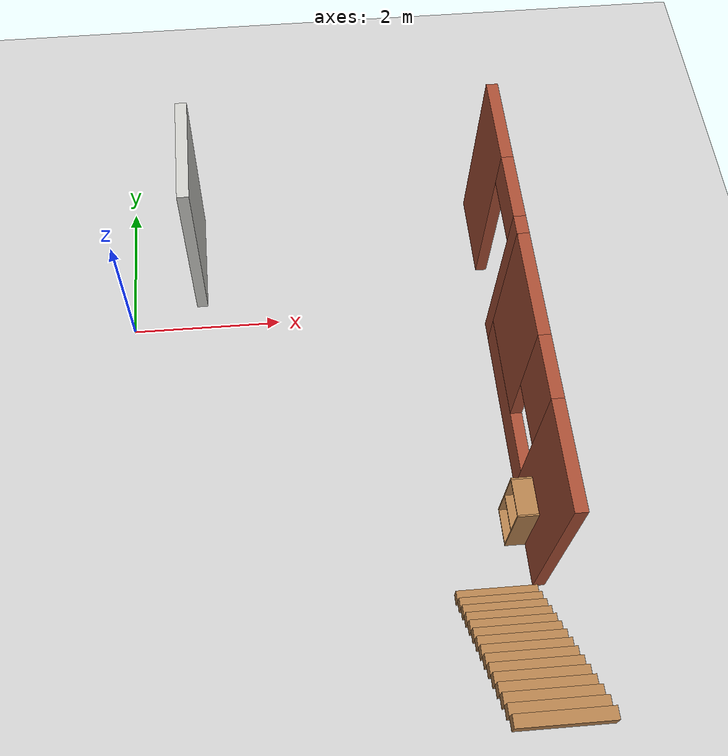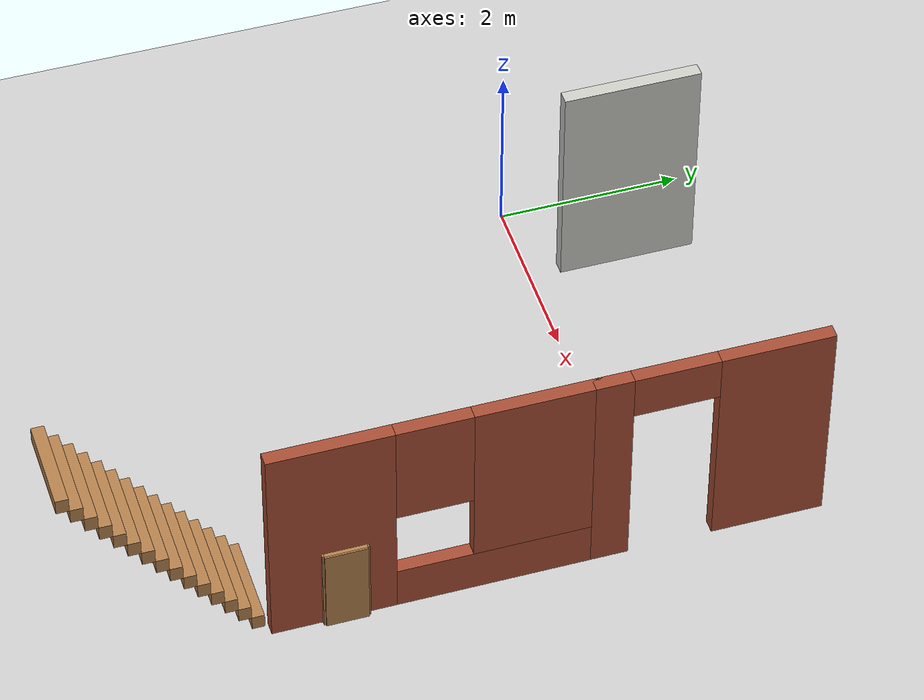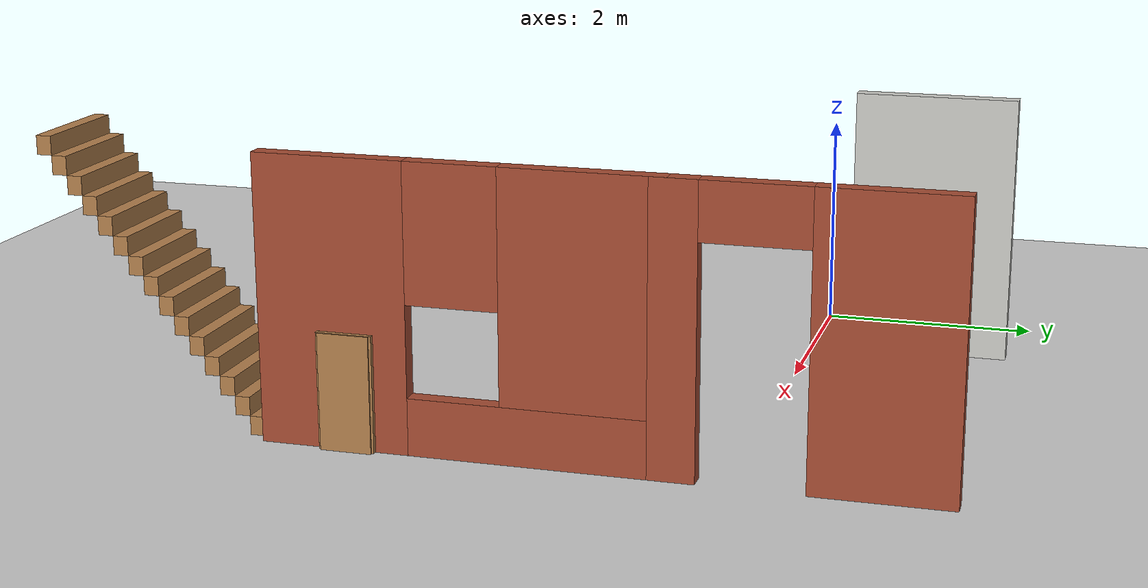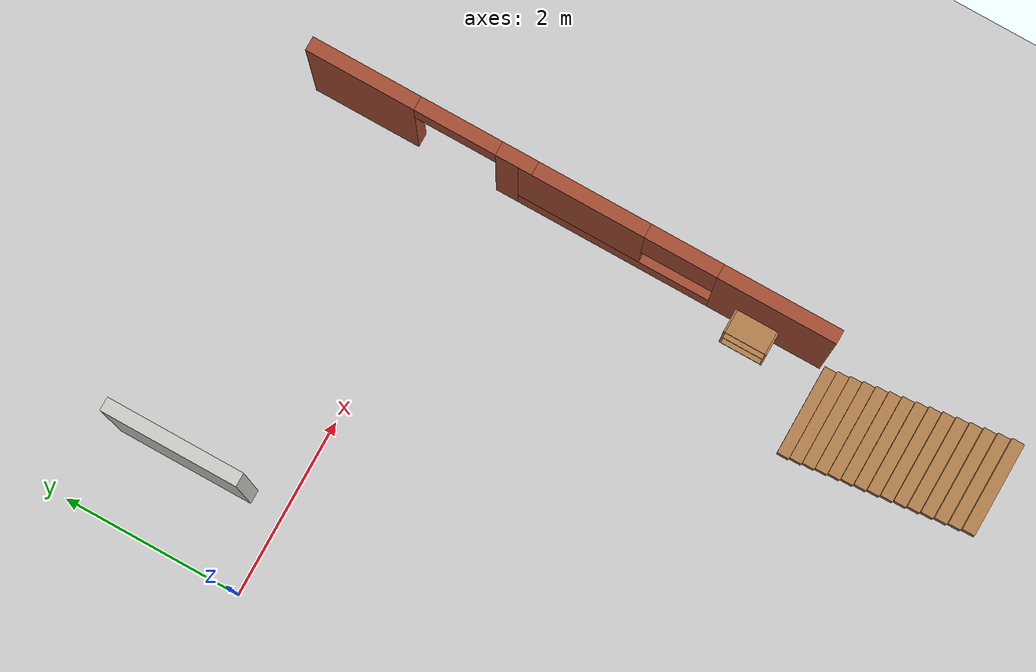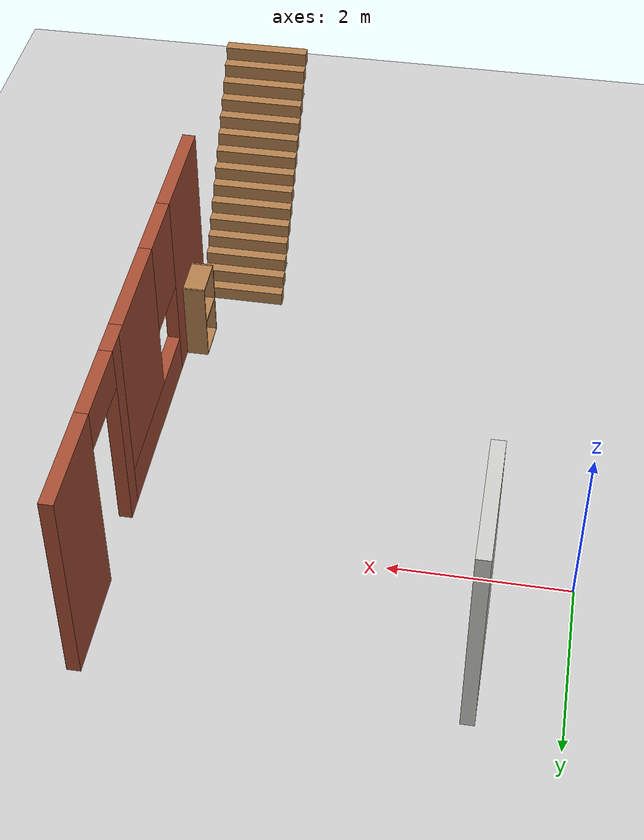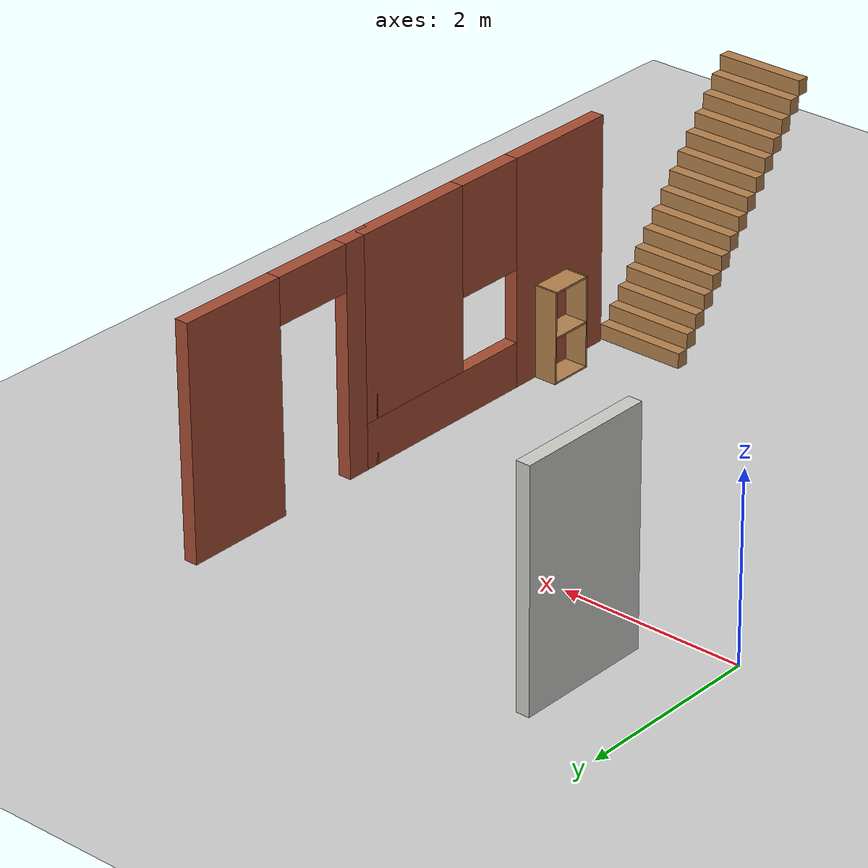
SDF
<sdf version="1.6">
 <world name="default">
  <model name="ground_plane">
   <static>1</static>
   <link name="link">
    <collision name="collision">
     <geometry><plane><normal>0 0 1</normal><size>100 100</size></plane></geometry>
     <surface>
      <contact><collide_bitmask>65535</collide_bitmask></contact>
      <friction><ode><mu>100</mu><mu2>50</mu2></ode></friction>
     </surface>
    </collision>
    <visual name="visual">
     <cast_shadows>0</cast_shadows>
     <geometry><plane><normal>0 0 1</normal><size>100 100</size></plane></geometry>
     <material>
      <script><uri>file://media/materials/scripts/gazebo.material</uri><name>Gazebo/Grey</name></script>
     </material>
    </visual>
   </link>
  </model>
  <model name="Building">
   <link name="Stairs_1">
    <pose>0.046334 -2.64714 0 0 -0 0</pose>
    <visual name="Stairs_1_Visual_3">
     <pose>3.95843 -0.779973 0.583333 0 -0 0</pose>
     <geometry><box><size>1 0.133333 0.166667</size></box></geometry>
     <material>
      <script><uri>file://media/materials/scripts/gazebo.material</uri><name>Gazebo/Wood</name></script>
      <ambient>1 1 1 1</ambient>
      <shader type="pixel"/>
      <diffuse>1 1 1 1</diffuse>
      <specular>0.2 0.2 0.2 1</specular>
      <emissive>0 0 0 1</emissive>
     </material>
     <meta><layer>0</layer></meta>
    </visual>
    <visual name="Stairs_1_Visual_0">
     <pose>3.95843 -0.379973 0.083333 0 -0 0</pose>
     <geometry><box><size>1 0.133333 0.166667</size></box></geometry>
     <material>
      <script><uri>file://media/materials/scripts/gazebo.material</uri><name>Gazebo/Wood</name></script>
      <ambient>1 1 1 1</ambient>
      <shader type="pixel"/>
      <diffuse>1 1 1 1</diffuse>
      <specular>0.2 0.2 0.2 1</specular>
      <emissive>0 0 0 1</emissive>
     </material>
     <meta><layer>0</layer></meta>
    </visual>
    <visual name="Stairs_1_Visual_4">
     <pose>3.95843 -0.913306 0.75 0 -0 0</pose>
     <geometry><box><size>1 0.133333 0.166667</size></box></geometry>
     <material>
      <script><uri>file://media/materials/scripts/gazebo.material</uri><name>Gazebo/Wood</name></script>
      <ambient>1 1 1 1</ambient>
      <shader type="pixel"/>
      <diffuse>1 1 1 1</diffuse>
      <specular>0.2 0.2 0.2 1</specular>
      <emissive>0 0 0 1</emissive>
     </material>
     <meta><layer>0</layer></meta>
    </visual>
    <visual name="Stairs_1_Visual_2">
     <pose>3.95843 -0.646639 0.416667 0 -0 0</pose>
     <geometry><box><size>1 0.133333 0.166667</size></box></geometry>
     <material>
      <script><uri>file://media/materials/scripts/gazebo.material</uri><name>Gazebo/Wood</name></script>
      <ambient>1 1 1 1</ambient>
      <shader type="pixel"/>
      <diffuse>1 1 1 1</diffuse>
      <specular>0.2 0.2 0.2 1</specular>
      <emissive>0 0 0 1</emissive>
     </material>
     <meta><layer>0</layer></meta>
    </visual>
    <visual name="Stairs_1_Visual_5">
     <pose>3.95843 -1.04664 0.916667 0 -0 0</pose>
     <geometry><box><size>1 0.133333 0.166667</size></box></geometry>
     <material>
      <script><uri>file://media/materials/scripts/gazebo.material</uri><name>Gazebo/Wood</name></script>
      <ambient>1 1 1 1</ambient>
      <shader type="pixel"/>
      <diffuse>1 1 1 1</diffuse>
      <specular>0.2 0.2 0.2 1</specular>
      <emissive>0 0 0 1</emissive>
     </material>
     <meta><layer>0</layer></meta>
    </visual>
    <visual name="Stairs_1_Visual_6">
     <pose>3.95843 -1.17997 1.08333 0 -0 0</pose>
     <geometry><box><size>1 0.133333 0.166667</size></box></geometry>
     <material>
      <script><uri>file://media/materials/scripts/gazebo.material</uri><name>Gazebo/Wood</name></script>
      <ambient>1 1 1 1</ambient>
      <shader type="pixel"/>
      <diffuse>1 1 1 1</diffuse>
      <specular>0.2 0.2 0.2 1</specular>
      <emissive>0 0 0 1</emissive>
     </material>
     <meta><layer>0</layer></meta>
    </visual>
    <visual name="Stairs_1_Visual_7">
     <pose>3.95843 -1.31331 1.25 0 -0 0</pose>
     <geometry><box><size>1 0.133333 0.166667</size></box></geometry>
     <material>
      <script><uri>file://media/materials/scripts/gazebo.material</uri><name>Gazebo/Wood</name></script>
      <ambient>1 1 1 1</ambient>
      <shader type="pixel"/>
      <diffuse>1 1 1 1</diffuse>
      <specular>0.2 0.2 0.2 1</specular>
      <emissive>0 0 0 1</emissive>
     </material>
     <meta><layer>0</layer></meta>
    </visual>
    <visual name="Stairs_1_Visual_12">
     <pose>3.95843 -1.97997 2.08333 0 -0 0</pose>
     <geometry><box><size>1 0.133333 0.166667</size></box></geometry>
     <material>
      <script><uri>file://media/materials/scripts/gazebo.material</uri><name>Gazebo/Wood</name></script>
      <ambient>1 1 1 1</ambient>
      <shader type="pixel"/>
      <diffuse>1 1 1 1</diffuse>
      <specular>0.2 0.2 0.2 1</specular>
      <emissive>0 0 0 1</emissive>
     </material>
     <meta><layer>0</layer></meta>
    </visual>
    <visual name="Stairs_1_Visual_13">
     <pose>3.95843 -2.11331 2.25 0 -0 0</pose>
     <geometry><box><size>1 0.133333 0.166667</size></box></geometry>
     <material>
      <script><uri>file://media/materials/scripts/gazebo.material</uri><name>Gazebo/Wood</name></script>
      <ambient>1 1 1 1</ambient>
      <shader type="pixel"/>
      <diffuse>1 1 1 1</diffuse>
      <specular>0.2 0.2 0.2 1</specular>
      <emissive>0 0 0 1</emissive>
     </material>
     <meta><layer>0</layer></meta>
    </visual>
    <visual name="Stairs_1_Visual_14">
     <pose>3.95843 -2.24664 2.41667 0 -0 0</pose>
     <geometry><box><size>1 0.133333 0.166667</size></box></geometry>
     <material>
      <script><uri>file://media/materials/scripts/gazebo.material</uri><name>Gazebo/Wood</name></script>
      <ambient>1 1 1 1</ambient>
      <shader type="pixel"/>
      <diffuse>1 1 1 1</diffuse>
      <specular>0.2 0.2 0.2 1</specular>
      <emissive>0 0 0 1</emissive>
     </material>
     <meta><layer>0</layer></meta>
    </visual>
    <visual name="Stairs_1_Visual_8">
     <pose>3.95843 -1.44664 1.41667 0 -0 0</pose>
     <geometry><box><size>1 0.133333 0.166667</size></box></geometry>
     <material>
      <script><uri>file://media/materials/scripts/gazebo.material</uri><name>Gazebo/Wood</name></script>
      <ambient>1 1 1 1</ambient>
      <shader type="pixel"/>
      <diffuse>1 1 1 1</diffuse>
      <specular>0.2 0.2 0.2 1</specular>
      <emissive>0 0 0 1</emissive>
     </material>
     <meta><layer>0</layer></meta>
    </visual>
    <visual name="Stairs_1_Visual_9">
     <pose>3.95843 -1.57997 1.58333 0 -0 0</pose>
     <geometry><box><size>1 0.133333 0.166667</size></box></geometry>
     <material>
      <script><uri>file://media/materials/scripts/gazebo.material</uri><name>Gazebo/Wood</name></script>
      <ambient>1 1 1 1</ambient>
      <shader type="pixel"/>
      <diffuse>1 1 1 1</diffuse>
      <specular>0.2 0.2 0.2 1</specular>
      <emissive>0 0 0 1</emissive>
     </material>
     <meta><layer>0</layer></meta>
    </visual>
    <visual name="Stairs_1_Visual_10">
     <pose>3.95843 -1.71331 1.75 0 -0 0</pose>
     <geometry><box><size>1 0.133333 0.166667</size></box></geometry>
     <material>
      <script><uri>file://media/materials/scripts/gazebo.material</uri><name>Gazebo/Wood</name></script>
      <ambient>1 1 1 1</ambient>
      <shader type="pixel"/>
      <diffuse>1 1 1 1</diffuse>
      <specular>0.2 0.2 0.2 1</specular>
      <emissive>0 0 0 1</emissive>
     </material>
     <meta><layer>0</layer></meta>
    </visual>
    <visual name="Stairs_1_Visual_11">
     <pose>3.95843 -1.84664 1.91667 0 -0 0</pose>
     <geometry><box><size>1 0.133333 0.166667</size></box></geometry>
     <material>
      <script><uri>file://media/materials/scripts/gazebo.material</uri><name>Gazebo/Wood</name></script>
      <ambient>1 1 1 1</ambient>
      <shader type="pixel"/>
      <diffuse>1 1 1 1</diffuse>
      <specular>0.2 0.2 0.2 1</specular>
      <emissive>0 0 0 1</emissive>
     </material>
     <meta><layer>0</layer></meta>
    </visual>
    <visual name="Stairs_1_Visual_1">
     <pose>3.95843 -0.513306 0.25 0 -0 0</pose>
     <geometry><box><size>1 0.133333 0.166667</size></box></geometry>
     <material>
      <script><uri>file://media/materials/scripts/gazebo.material</uri><name>Gazebo/Wood</name></script>
      <ambient>1 1 1 1</ambient>
      <shader type="pixel"/>
      <diffuse>1 1 1 1</diffuse>
      <specular>0.2 0.2 0.2 1</specular>
      <emissive>0 0 0 1</emissive>
     </material>
     <meta><layer>0</layer></meta>
    </visual>
    <collision name="Stairs_1_Collision_4">
     <pose>3.95843 -0.913306 0.75 0 -0 0</pose>
     <geometry><box><size>1 0.133333 0.166667</size></box></geometry>
     <surface>
      <friction>
       <ode><mu>1</mu><mu2>1</mu2><fdir1>0 0 0</fdir1><slip1>0</slip1><slip2>0</slip2></ode>
       <torsional>
        <coefficient>1</coefficient>
        <patch_radius>0</patch_radius>
        <surface_radius>0</surface_radius>
        <use_patch_radius>1</use_patch_radius>
        <ode><slip>0</slip></ode>
       </torsional>
      </friction>
      <bounce><restitution_coefficient>0</restitution_coefficient><threshold>1e+06</threshold></bounce>
      <contact>
       <collide_without_contact>0</collide_without_contact>
       <collide_without_contact_bitmask>1</collide_without_contact_bitmask>
       <collide_bitmask>1</collide_bitmask>
       <ode>
        <soft_cfm>0</soft_cfm>
        <soft_erp>0.2</soft_erp>
        <kp>1e+13</kp>
        <kd>1</kd>
        <max_vel>0.01</max_vel>
        <min_depth>0</min_depth>
       </ode>
       <bullet>
        <split_impulse>1</split_impulse>
        <split_impulse_penetration_threshold>-0.01</split_impulse_penetration_threshold>
        <soft_cfm>0</soft_cfm>
        <soft_erp>0.2</soft_erp>
        <kp>1e+13</kp>
        <kd>1</kd>
       </bullet>
      </contact>
     </surface>
    </collision>
    <collision name="Stairs_1_Collision_0">
     <pose>3.95843 -0.379973 0.083333 0 -0 0</pose>
     <geometry><box><size>1 0.133333 0.166667</size></box></geometry>
     <surface>
      <friction>
       <ode><mu>1</mu><mu2>1</mu2><fdir1>0 0 0</fdir1><slip1>0</slip1><slip2>0</slip2></ode>
       <torsional>
        <coefficient>1</coefficient>
        <patch_radius>0</patch_radius>
        <surface_radius>0</surface_radius>
        <use_patch_radius>1</use_patch_radius>
        <ode><slip>0</slip></ode>
       </torsional>
      </friction>
      <bounce><restitution_coefficient>0</restitution_coefficient><threshold>1e+06</threshold></bounce>
      <contact>
       <collide_without_contact>0</collide_without_contact>
       <collide_without_contact_bitmask>1</collide_without_contact_bitmask>
       <collide_bitmask>1</collide_bitmask>
       <ode>
        <soft_cfm>0</soft_cfm>
        <soft_erp>0.2</soft_erp>
        <kp>1e+13</kp>
        <kd>1</kd>
        <max_vel>0.01</max_vel>
        <min_depth>0</min_depth>
       </ode>
       <bullet>
        <split_impulse>1</split_impulse>
        <split_impulse_penetration_threshold>-0.01</split_impulse_penetration_threshold>
        <soft_cfm>0</soft_cfm>
        <soft_erp>0.2</soft_erp>
        <kp>1e+13</kp>
        <kd>1</kd>
       </bullet>
      </contact>
     </surface>
    </collision>
    <collision name="Stairs_1_Collision_3">
     <pose>3.95843 -0.779973 0.583333 0 -0 0</pose>
     <geometry><box><size>1 0.133333 0.166667</size></box></geometry>
     <surface>
      <friction>
       <ode><mu>1</mu><mu2>1</mu2><fdir1>0 0 0</fdir1><slip1>0</slip1><slip2>0</slip2></ode>
       <torsional>
        <coefficient>1</coefficient>
        <patch_radius>0</patch_radius>
        <surface_radius>0</surface_radius>
        <use_patch_radius>1</use_patch_radius>
        <ode><slip>0</slip></ode>
       </torsional>
      </friction>
      <bounce><restitution_coefficient>0</restitution_coefficient><threshold>1e+06</threshold></bounce>
      <contact>
       <collide_without_contact>0</collide_without_contact>
       <collide_without_contact_bitmask>1</collide_without_contact_bitmask>
       <collide_bitmask>1</collide_bitmask>
       <ode>
        <soft_cfm>0</soft_cfm>
        <soft_erp>0.2</soft_erp>
        <kp>1e+13</kp>
        <kd>1</kd>
        <max_vel>0.01</max_vel>
        <min_depth>0</min_depth>
       </ode>
       <bullet>
        <split_impulse>1</split_impulse>
        <split_impulse_penetration_threshold>-0.01</split_impulse_penetration_threshold>
        <soft_cfm>0</soft_cfm>
        <soft_erp>0.2</soft_erp>
        <kp>1e+13</kp>
        <kd>1</kd>
       </bullet>
      </contact>
     </surface>
    </collision>
    <collision name="Stairs_1_Collision_1">
     <pose>3.95843 -0.513306 0.25 0 -0 0</pose>
     <geometry><box><size>1 0.133333 0.166667</size></box></geometry>
     <surface>
      <friction>
       <ode><mu>1</mu><mu2>1</mu2><fdir1>0 0 0</fdir1><slip1>0</slip1><slip2>0</slip2></ode>
       <torsional>
        <coefficient>1</coefficient>
        <patch_radius>0</patch_radius>
        <surface_radius>0</surface_radius>
        <use_patch_radius>1</use_patch_radius>
        <ode><slip>0</slip></ode>
       </torsional>
      </friction>
      <bounce><restitution_coefficient>0</restitution_coefficient><threshold>1e+06</threshold></bounce>
      <contact>
       <collide_without_contact>0</collide_without_contact>
       <collide_without_contact_bitmask>1</collide_without_contact_bitmask>
       <collide_bitmask>1</collide_bitmask>
       <ode>
        <soft_cfm>0</soft_cfm>
        <soft_erp>0.2</soft_erp>
        <kp>1e+13</kp>
        <kd>1</kd>
        <max_vel>0.01</max_vel>
        <min_depth>0</min_depth>
       </ode>
       <bullet>
        <split_impulse>1</split_impulse>
        <split_impulse_penetration_threshold>-0.01</split_impulse_penetration_threshold>
        <soft_cfm>0</soft_cfm>
        <soft_erp>0.2</soft_erp>
        <kp>1e+13</kp>
        <kd>1</kd>
       </bullet>
      </contact>
     </surface>
    </collision>
    <collision name="Stairs_1_Collision_2">
     <pose>3.95843 -0.646639 0.416667 0 -0 0</pose>
     <geometry><box><size>1 0.133333 0.166667</size></box></geometry>
     <surface>
      <friction>
       <ode><mu>1</mu><mu2>1</mu2><fdir1>0 0 0</fdir1><slip1>0</slip1><slip2>0</slip2></ode>
       <torsional>
        <coefficient>1</coefficient>
        <patch_radius>0</patch_radius>
        <surface_radius>0</surface_radius>
        <use_patch_radius>1</use_patch_radius>
        <ode><slip>0</slip></ode>
       </torsional>
      </friction>
      <bounce><restitution_coefficient>0</restitution_coefficient><threshold>1e+06</threshold></bounce>
      <contact>
       <collide_without_contact>0</collide_without_contact>
       <collide_without_contact_bitmask>1</collide_without_contact_bitmask>
       <collide_bitmask>1</collide_bitmask>
       <ode>
        <soft_cfm>0</soft_cfm>
        <soft_erp>0.2</soft_erp>
        <kp>1e+13</kp>
        <kd>1</kd>
        <max_vel>0.01</max_vel>
        <min_depth>0</min_depth>
       </ode>
       <bullet>
        <split_impulse>1</split_impulse>
        <split_impulse_penetration_threshold>-0.01</split_impulse_penetration_threshold>
        <soft_cfm>0</soft_cfm>
        <soft_erp>0.2</soft_erp>
        <kp>1e+13</kp>
        <kd>1</kd>
       </bullet>
      </contact>
     </surface>
    </collision>
    <collision name="Stairs_1_Collision_5">
     <pose>3.95843 -1.04664 0.916667 0 -0 0</pose>
     <geometry><box><size>1 0.133333 0.166667</size></box></geometry>
     <surface>
      <friction>
       <ode><mu>1</mu><mu2>1</mu2><fdir1>0 0 0</fdir1><slip1>0</slip1><slip2>0</slip2></ode>
       <torsional>
        <coefficient>1</coefficient>
        <patch_radius>0</patch_radius>
        <surface_radius>0</surface_radius>
        <use_patch_radius>1</use_patch_radius>
        <ode><slip>0</slip></ode>
       </torsional>
      </friction>
      <bounce><restitution_coefficient>0</restitution_coefficient><threshold>1e+06</threshold></bounce>
      <contact>
       <collide_without_contact>0</collide_without_contact>
       <collide_without_contact_bitmask>1</collide_without_contact_bitmask>
       <collide_bitmask>1</collide_bitmask>
       <ode>
        <soft_cfm>0</soft_cfm>
        <soft_erp>0.2</soft_erp>
        <kp>1e+13</kp>
        <kd>1</kd>
        <max_vel>0.01</max_vel>
        <min_depth>0</min_depth>
       </ode>
       <bullet>
        <split_impulse>1</split_impulse>
        <split_impulse_penetration_threshold>-0.01</split_impulse_penetration_threshold>
        <soft_cfm>0</soft_cfm>
        <soft_erp>0.2</soft_erp>
        <kp>1e+13</kp>
        <kd>1</kd>
       </bullet>
      </contact>
     </surface>
    </collision>
    <collision name="Stairs_1_Collision_6">
     <pose>3.95843 -1.17997 1.08333 0 -0 0</pose>
     <geometry><box><size>1 0.133333 0.166667</size></box></geometry>
     <surface>
      <friction>
       <ode><mu>1</mu><mu2>1</mu2><fdir1>0 0 0</fdir1><slip1>0</slip1><slip2>0</slip2></ode>
       <torsional>
        <coefficient>1</coefficient>
        <patch_radius>0</patch_radius>
        <surface_radius>0</surface_radius>
        <use_patch_radius>1</use_patch_radius>
        <ode><slip>0</slip></ode>
       </torsional>
      </friction>
      <bounce><restitution_coefficient>0</restitution_coefficient><threshold>1e+06</threshold></bounce>
      <contact>
       <collide_without_contact>0</collide_without_contact>
       <collide_without_contact_bitmask>1</collide_without_contact_bitmask>
       <collide_bitmask>1</collide_bitmask>
       <ode>
        <soft_cfm>0</soft_cfm>
        <soft_erp>0.2</soft_erp>
        <kp>1e+13</kp>
        <kd>1</kd>
        <max_vel>0.01</max_vel>
        <min_depth>0</min_depth>
       </ode>
       <bullet>
        <split_impulse>1</split_impulse>
        <split_impulse_penetration_threshold>-0.01</split_impulse_penetration_threshold>
        <soft_cfm>0</soft_cfm>
        <soft_erp>0.2</soft_erp>
        <kp>1e+13</kp>
        <kd>1</kd>
       </bullet>
      </contact>
     </surface>
    </collision>
    <collision name="Stairs_1_Collision_7">
     <pose>3.95843 -1.31331 1.25 0 -0 0</pose>
     <geometry><box><size>1 0.133333 0.166667</size></box></geometry>
     <surface>
      <friction>
       <ode><mu>1</mu><mu2>1</mu2><fdir1>0 0 0</fdir1><slip1>0</slip1><slip2>0</slip2></ode>
       <torsional>
        <coefficient>1</coefficient>
        <patch_radius>0</patch_radius>
        <surface_radius>0</surface_radius>
        <use_patch_radius>1</use_patch_radius>
        <ode><slip>0</slip></ode>
       </torsional>
      </friction>
      <bounce><restitution_coefficient>0</restitution_coefficient><threshold>1e+06</threshold></bounce>
      <contact>
       <collide_without_contact>0</collide_without_contact>
       <collide_without_contact_bitmask>1</collide_without_contact_bitmask>
       <collide_bitmask>1</collide_bitmask>
       <ode>
        <soft_cfm>0</soft_cfm>
        <soft_erp>0.2</soft_erp>
        <kp>1e+13</kp>
        <kd>1</kd>
        <max_vel>0.01</max_vel>
        <min_depth>0</min_depth>
       </ode>
       <bullet>
        <split_impulse>1</split_impulse>
        <split_impulse_penetration_threshold>-0.01</split_impulse_penetration_threshold>
        <soft_cfm>0</soft_cfm>
        <soft_erp>0.2</soft_erp>
        <kp>1e+13</kp>
        <kd>1</kd>
       </bullet>
      </contact>
     </surface>
    </collision>
    <collision name="Stairs_1_Collision_8">
     <pose>3.95843 -1.44664 1.41667 0 -0 0</pose>
     <geometry><box><size>1 0.133333 0.166667</size></box></geometry>
     <surface>
      <friction>
       <ode><mu>1</mu><mu2>1</mu2><fdir1>0 0 0</fdir1><slip1>0</slip1><slip2>0</slip2></ode>
       <torsional>
        <coefficient>1</coefficient>
        <patch_radius>0</patch_radius>
        <surface_radius>0</surface_radius>
        <use_patch_radius>1</use_patch_radius>
        <ode><slip>0</slip></ode>
       </torsional>
      </friction>
      <bounce><restitution_coefficient>0</restitution_coefficient><threshold>1e+06</threshold></bounce>
      <contact>
       <collide_without_contact>0</collide_without_contact>
       <collide_without_contact_bitmask>1</collide_without_contact_bitmask>
       <collide_bitmask>1</collide_bitmask>
       <ode>
        <soft_cfm>0</soft_cfm>
        <soft_erp>0.2</soft_erp>
        <kp>1e+13</kp>
        <kd>1</kd>
        <max_vel>0.01</max_vel>
        <min_depth>0</min_depth>
       </ode>
       <bullet>
        <split_impulse>1</split_impulse>
        <split_impulse_penetration_threshold>-0.01</split_impulse_penetration_threshold>
        <soft_cfm>0</soft_cfm>
        <soft_erp>0.2</soft_erp>
        <kp>1e+13</kp>
        <kd>1</kd>
       </bullet>
      </contact>
     </surface>
    </collision>
    <collision name="Stairs_1_Collision_9">
     <pose>3.95843 -1.57997 1.58333 0 -0 0</pose>
     <geometry><box><size>1 0.133333 0.166667</size></box></geometry>
     <surface>
      <friction>
       <ode><mu>1</mu><mu2>1</mu2><fdir1>0 0 0</fdir1><slip1>0</slip1><slip2>0</slip2></ode>
       <torsional>
        <coefficient>1</coefficient>
        <patch_radius>0</patch_radius>
        <surface_radius>0</surface_radius>
        <use_patch_radius>1</use_patch_radius>
        <ode><slip>0</slip></ode>
       </torsional>
      </friction>
      <bounce><restitution_coefficient>0</restitution_coefficient><threshold>1e+06</threshold></bounce>
      <contact>
       <collide_without_contact>0</collide_without_contact>
       <collide_without_contact_bitmask>1</collide_without_contact_bitmask>
       <collide_bitmask>1</collide_bitmask>
       <ode>
        <soft_cfm>0</soft_cfm>
        <soft_erp>0.2</soft_erp>
        <kp>1e+13</kp>
        <kd>1</kd>
        <max_vel>0.01</max_vel>
        <min_depth>0</min_depth>
       </ode>
       <bullet>
        <split_impulse>1</split_impulse>
        <split_impulse_penetration_threshold>-0.01</split_impulse_penetration_threshold>
        <soft_cfm>0</soft_cfm>
        <soft_erp>0.2</soft_erp>
        <kp>1e+13</kp>
        <kd>1</kd>
       </bullet>
      </contact>
     </surface>
    </collision>
    <collision name="Stairs_1_Collision_10">
     <pose>3.95843 -1.71331 1.75 0 -0 0</pose>
     <geometry><box><size>1 0.133333 0.166667</size></box></geometry>
     <surface>
      <friction>
       <ode><mu>1</mu><mu2>1</mu2><fdir1>0 0 0</fdir1><slip1>0</slip1><slip2>0</slip2></ode>
       <torsional>
        <coefficient>1</coefficient>
        <patch_radius>0</patch_radius>
        <surface_radius>0</surface_radius>
        <use_patch_radius>1</use_patch_radius>
        <ode><slip>0</slip></ode>
       </torsional>
      </friction>
      <bounce><restitution_coefficient>0</restitution_coefficient><threshold>1e+06</threshold></bounce>
      <contact>
       <collide_without_contact>0</collide_without_contact>
       <collide_without_contact_bitmask>1</collide_without_contact_bitmask>
       <collide_bitmask>1</collide_bitmask>
       <ode>
        <soft_cfm>0</soft_cfm>
        <soft_erp>0.2</soft_erp>
        <kp>1e+13</kp>
        <kd>1</kd>
        <max_vel>0.01</max_vel>
        <min_depth>0</min_depth>
       </ode>
       <bullet>
        <split_impulse>1</split_impulse>
        <split_impulse_penetration_threshold>-0.01</split_impulse_penetration_threshold>
        <soft_cfm>0</soft_cfm>
        <soft_erp>0.2</soft_erp>
        <kp>1e+13</kp>
        <kd>1</kd>
       </bullet>
      </contact>
     </surface>
    </collision>
    <collision name="Stairs_1_Collision_11">
     <pose>3.95843 -1.84664 1.91667 0 -0 0</pose>
     <geometry><box><size>1 0.133333 0.166667</size></box></geometry>
     <surface>
      <friction>
       <ode><mu>1</mu><mu2>1</mu2><fdir1>0 0 0</fdir1><slip1>0</slip1><slip2>0</slip2></ode>
       <torsional>
        <coefficient>1</coefficient>
        <patch_radius>0</patch_radius>
        <surface_radius>0</surface_radius>
        <use_patch_radius>1</use_patch_radius>
        <ode><slip>0</slip></ode>
       </torsional>
      </friction>
      <bounce><restitution_coefficient>0</restitution_coefficient><threshold>1e+06</threshold></bounce>
      <contact>
       <collide_without_contact>0</collide_without_contact>
       <collide_without_contact_bitmask>1</collide_without_contact_bitmask>
       <collide_bitmask>1</collide_bitmask>
       <ode>
        <soft_cfm>0</soft_cfm>
        <soft_erp>0.2</soft_erp>
        <kp>1e+13</kp>
        <kd>1</kd>
        <max_vel>0.01</max_vel>
        <min_depth>0</min_depth>
       </ode>
       <bullet>
        <split_impulse>1</split_impulse>
        <split_impulse_penetration_threshold>-0.01</split_impulse_penetration_threshold>
        <soft_cfm>0</soft_cfm>
        <soft_erp>0.2</soft_erp>
        <kp>1e+13</kp>
        <kd>1</kd>
       </bullet>
      </contact>
     </surface>
    </collision>
    <collision name="Stairs_1_Collision_13">
     <pose>3.95843 -2.11331 2.25 0 -0 0</pose>
     <geometry><box><size>1 0.133333 0.166667</size></box></geometry>
     <surface>
      <friction>
       <ode><mu>1</mu><mu2>1</mu2><fdir1>0 0 0</fdir1><slip1>0</slip1><slip2>0</slip2></ode>
       <torsional>
        <coefficient>1</coefficient>
        <patch_radius>0</patch_radius>
        <surface_radius>0</surface_radius>
        <use_patch_radius>1</use_patch_radius>
        <ode><slip>0</slip></ode>
       </torsional>
      </friction>
      <bounce><restitution_coefficient>0</restitution_coefficient><threshold>1e+06</threshold></bounce>
      <contact>
       <collide_without_contact>0</collide_without_contact>
       <collide_without_contact_bitmask>1</collide_without_contact_bitmask>
       <collide_bitmask>1</collide_bitmask>
       <ode>
        <soft_cfm>0</soft_cfm>
        <soft_erp>0.2</soft_erp>
        <kp>1e+13</kp>
        <kd>1</kd>
        <max_vel>0.01</max_vel>
        <min_depth>0</min_depth>
       </ode>
       <bullet>
        <split_impulse>1</split_impulse>
        <split_impulse_penetration_threshold>-0.01</split_impulse_penetration_threshold>
        <soft_cfm>0</soft_cfm>
        <soft_erp>0.2</soft_erp>
        <kp>1e+13</kp>
        <kd>1</kd>
       </bullet>
      </contact>
     </surface>
    </collision>
    <collision name="Stairs_1_Collision_12">
     <pose>3.95843 -1.97997 2.08333 0 -0 0</pose>
     <geometry><box><size>1 0.133333 0.166667</size></box></geometry>
     <surface>
      <friction>
       <ode><mu>1</mu><mu2>1</mu2><fdir1>0 0 0</fdir1><slip1>0</slip1><slip2>0</slip2></ode>
       <torsional>
        <coefficient>1</coefficient>
        <patch_radius>0</patch_radius>
        <surface_radius>0</surface_radius>
        <use_patch_radius>1</use_patch_radius>
        <ode><slip>0</slip></ode>
       </torsional>
      </friction>
      <bounce><restitution_coefficient>0</restitution_coefficient><threshold>1e+06</threshold></bounce>
      <contact>
       <collide_without_contact>0</collide_without_contact>
       <collide_without_contact_bitmask>1</collide_without_contact_bitmask>
       <collide_bitmask>1</collide_bitmask>
       <ode>
        <soft_cfm>0</soft_cfm>
        <soft_erp>0.2</soft_erp>
        <kp>1e+13</kp>
        <kd>1</kd>
        <max_vel>0.01</max_vel>
        <min_depth>0</min_depth>
       </ode>
       <bullet>
        <split_impulse>1</split_impulse>
        <split_impulse_penetration_threshold>-0.01</split_impulse_penetration_threshold>
        <soft_cfm>0</soft_cfm>
        <soft_erp>0.2</soft_erp>
        <kp>1e+13</kp>
        <kd>1</kd>
       </bullet>
      </contact>
     </surface>
    </collision>
    <collision name="Stairs_1_Collision_14">
     <pose>3.95843 -2.24664 2.41667 0 -0 0</pose>
     <geometry><box><size>1 0.133333 0.166667</size></box></geometry>
     <surface>
      <friction>
       <ode><mu>1</mu><mu2>1</mu2><fdir1>0 0 0</fdir1><slip1>0</slip1><slip2>0</slip2></ode>
       <torsional>
        <coefficient>1</coefficient>
        <patch_radius>0</patch_radius>
        <surface_radius>0</surface_radius>
        <use_patch_radius>1</use_patch_radius>
        <ode><slip>0</slip></ode>
       </torsional>
      </friction>
      <bounce><restitution_coefficient>0</restitution_coefficient><threshold>1e+06</threshold></bounce>
      <contact>
       <collide_without_contact>0</collide_without_contact>
       <collide_without_contact_bitmask>1</collide_without_contact_bitmask>
       <collide_bitmask>1</collide_bitmask>
       <ode>
        <soft_cfm>0</soft_cfm>
        <soft_erp>0.2</soft_erp>
        <kp>1e+13</kp>
        <kd>1</kd>
        <max_vel>0.01</max_vel>
        <min_depth>0</min_depth>
       </ode>
       <bullet>
        <split_impulse>1</split_impulse>
        <split_impulse_penetration_threshold>-0.01</split_impulse_penetration_threshold>
        <soft_cfm>0</soft_cfm>
        <soft_erp>0.2</soft_erp>
        <kp>1e+13</kp>
        <kd>1</kd>
       </bullet>
      </contact>
     </surface>
    </collision>
   </link>
   <link name="Wall_10">
    <pose>0.55 2.175 0 0 -0 1.5708</pose>
    <visual name="Wall_10_Visual">
     <pose>0 0 1.25 0 -0 0</pose>
     <geometry><box><size>1.5 0.15 2.5</size></box></geometry>
     <material>
      <script><uri>file://media/materials/scripts/gazebo.material</uri><name>Gazebo/CeilingTiled</name></script>
      <ambient>0.435294 0.796078 0.67451 1</ambient>
      <shader type="pixel"/>
      <diffuse>1 1 1 1</diffuse>
      <specular>0 0 0 1</specular>
      <emissive>0 0 0 1</emissive>
     </material>
     <meta><layer>0</layer></meta>
    </visual>
    <collision name="Wall_10_Collision">
     <pose>0 0 1.25 0 -0 0</pose>
     <geometry><box><size>1.5 0.15 2.5</size></box></geometry>
     <surface>
      <friction>
       <ode><mu>1</mu><mu2>1</mu2><fdir1>0 0 0</fdir1><slip1>0</slip1><slip2>0</slip2></ode>
       <torsional>
        <coefficient>1</coefficient>
        <patch_radius>0</patch_radius>
        <surface_radius>0</surface_radius>
        <use_patch_radius>1</use_patch_radius>
        <ode><slip>0</slip></ode>
       </torsional>
      </friction>
      <bounce><restitution_coefficient>0</restitution_coefficient><threshold>1e+06</threshold></bounce>
      <contact>
       <collide_without_contact>0</collide_without_contact>
       <collide_without_contact_bitmask>1</collide_without_contact_bitmask>
       <collide_bitmask>1</collide_bitmask>
       <ode>
        <soft_cfm>0</soft_cfm>
        <soft_erp>0.2</soft_erp>
        <kp>1e+13</kp>
        <kd>1</kd>
        <max_vel>0.01</max_vel>
        <min_depth>0</min_depth>
       </ode>
       <bullet>
        <split_impulse>1</split_impulse>
        <split_impulse_penetration_threshold>-0.01</split_impulse_penetration_threshold>
        <soft_cfm>0</soft_cfm>
        <soft_erp>0.2</soft_erp>
        <kp>1e+13</kp>
        <kd>1</kd>
       </bullet>
      </contact>
     </surface>
    </collision>
   </link>
   <link name="Wall_2">
    <pose>4.55 -1.175 0 0 -0 1.5708</pose>
    <inertial>
     <mass>1</mass>
     <inertia><ixx>1</ixx><ixy>0</ixy><ixz>0</ixz><iyy>1</iyy><iyz>0</iyz><izz>1</izz></inertia>
    </inertial>
    <visual name="Wall_2_Visual_0">
     <pose>-1.09465 0 1.25 0 -0 0</pose>
     <geometry><box><size>1.31069 0.15 2.5</size></box></geometry>
     <material>
      <script><uri>file://media/materials/scripts/gazebo.material</uri><name>Gazebo/Bricks</name></script>
      <ambient>1 1 1 1</ambient>
      <shader type="pixel"><normal_map>__default__</normal_map></shader>
      <diffuse>1 1 1 1</diffuse>
      <specular>0.2 0.2 0.2 1</specular>
      <emissive>0 0 0 1</emissive>
     </material>
     <meta><layer>0</layer></meta>
    </visual>
    <visual name="Wall_2_Visual_1">
     <pose>0.655345 0 0.25 0 -0 0</pose>
     <geometry><box><size>2.18931 0.15 0.5</size></box></geometry>
     <material>
      <script><uri>file://media/materials/scripts/gazebo.material</uri><name>Gazebo/Bricks</name></script>
      <ambient>1 1 1 1</ambient>
      <shader type="pixel"><normal_map>__default__</normal_map></shader>
      <diffuse>1 1 1 1</diffuse>
      <specular>0.2 0.2 0.2 1</specular>
      <emissive>0 0 0 1</emissive>
     </material>
     <meta><layer>0</layer></meta>
    </visual>
    <visual name="Wall_2_Visual_2">
     <pose>1.05534 0 1.5 0 -0 0</pose>
     <geometry><box><size>1.38931 0.15 2</size></box></geometry>
     <material>
      <script><uri>file://media/materials/scripts/gazebo.material</uri><name>Gazebo/Bricks</name></script>
      <ambient>1 1 1 1</ambient>
      <shader type="pixel"><normal_map>__default__</normal_map></shader>
      <diffuse>1 1 1 1</diffuse>
      <specular>0.2 0.2 0.2 1</specular>
      <emissive>0 0 0 1</emissive>
     </material>
     <meta><layer>0</layer></meta>
    </visual>
    <visual name="Wall_2_Visual_3">
     <pose>-0.03931 0 1.9 0 -0 0</pose>
     <geometry><box><size>0.8 0.15 1.2</size></box></geometry>
     <material>
      <script><uri>file://media/materials/scripts/gazebo.material</uri><name>Gazebo/Bricks</name></script>
      <ambient>1 1 1 1</ambient>
      <shader type="pixel"><normal_map>__default__</normal_map></shader>
      <diffuse>1 1 1 1</diffuse>
      <specular>0.2 0.2 0.2 1</specular>
      <emissive>0 0 0 1</emissive>
     </material>
     <meta><layer>0</layer></meta>
    </visual>
    <collision name="Wall_2_Collision_0">
     <pose>-1.09465 0 1.25 0 -0 0</pose>
     <geometry><box><size>1.31069 0.15 2.5</size></box></geometry>
     <surface>
      <friction>
       <ode><mu>1</mu><mu2>1</mu2><fdir1>0 0 0</fdir1><slip1>0</slip1><slip2>0</slip2></ode>
       <torsional>
        <coefficient>1</coefficient>
        <patch_radius>0</patch_radius>
        <surface_radius>0</surface_radius>
        <use_patch_radius>1</use_patch_radius>
        <ode><slip>0</slip></ode>
       </torsional>
      </friction>
      <bounce><restitution_coefficient>0</restitution_coefficient><threshold>1e+06</threshold></bounce>
      <contact>
       <collide_without_contact>0</collide_without_contact>
       <collide_without_contact_bitmask>1</collide_without_contact_bitmask>
       <collide_bitmask>1</collide_bitmask>
       <ode>
        <soft_cfm>0</soft_cfm>
        <soft_erp>0.2</soft_erp>
        <kp>1e+13</kp>
        <kd>1</kd>
        <max_vel>0.01</max_vel>
        <min_depth>0</min_depth>
       </ode>
       <bullet>
        <split_impulse>1</split_impulse>
        <split_impulse_penetration_threshold>-0.01</split_impulse_penetration_threshold>
        <soft_cfm>0</soft_cfm>
        <soft_erp>0.2</soft_erp>
        <kp>1e+13</kp>
        <kd>1</kd>
       </bullet>
      </contact>
     </surface>
    </collision>
    <collision name="Wall_2_Collision_3">
     <pose>-0.03931 0 1.9 0 -0 0</pose>
     <geometry><box><size>0.8 0.15 1.2</size></box></geometry>
     <surface>
      <friction>
       <ode><mu>1</mu><mu2>1</mu2><fdir1>0 0 0</fdir1><slip1>0</slip1><slip2>0</slip2></ode>
       <torsional>
        <coefficient>1</coefficient>
        <patch_radius>0</patch_radius>
        <surface_radius>0</surface_radius>
        <use_patch_radius>1</use_patch_radius>
        <ode><slip>0</slip></ode>
       </torsional>
      </friction>
      <bounce><restitution_coefficient>0</restitution_coefficient><threshold>1e+06</threshold></bounce>
      <contact>
       <collide_without_contact>0</collide_without_contact>
       <collide_without_contact_bitmask>1</collide_without_contact_bitmask>
       <collide_bitmask>1</collide_bitmask>
       <ode>
        <soft_cfm>0</soft_cfm>
        <soft_erp>0.2</soft_erp>
        <kp>1e+13</kp>
        <kd>1</kd>
        <max_vel>0.01</max_vel>
        <min_depth>0</min_depth>
       </ode>
       <bullet>
        <split_impulse>1</split_impulse>
        <split_impulse_penetration_threshold>-0.01</split_impulse_penetration_threshold>
        <soft_cfm>0</soft_cfm>
        <soft_erp>0.2</soft_erp>
        <kp>1e+13</kp>
        <kd>1</kd>
       </bullet>
      </contact>
     </surface>
    </collision>
    <collision name="Wall_2_Collision_1">
     <pose>0.655345 0 0.25 0 -0 0</pose>
     <geometry><box><size>2.18931 0.15 0.5</size></box></geometry>
     <surface>
      <friction>
       <ode><mu>1</mu><mu2>1</mu2><fdir1>0 0 0</fdir1><slip1>0</slip1><slip2>0</slip2></ode>
       <torsional>
        <coefficient>1</coefficient>
        <patch_radius>0</patch_radius>
        <surface_radius>0</surface_radius>
        <use_patch_radius>1</use_patch_radius>
        <ode><slip>0</slip></ode>
       </torsional>
      </friction>
      <bounce><restitution_coefficient>0</restitution_coefficient><threshold>1e+06</threshold></bounce>
      <contact>
       <collide_without_contact>0</collide_without_contact>
       <collide_without_contact_bitmask>1</collide_without_contact_bitmask>
       <collide_bitmask>1</collide_bitmask>
       <ode>
        <soft_cfm>0</soft_cfm>
        <soft_erp>0.2</soft_erp>
        <kp>1e+13</kp>
        <kd>1</kd>
        <max_vel>0.01</max_vel>
        <min_depth>0</min_depth>
       </ode>
       <bullet>
        <split_impulse>1</split_impulse>
        <split_impulse_penetration_threshold>-0.01</split_impulse_penetration_threshold>
        <soft_cfm>0</soft_cfm>
        <soft_erp>0.2</soft_erp>
        <kp>1e+13</kp>
        <kd>1</kd>
       </bullet>
      </contact>
     </surface>
    </collision>
    <collision name="Wall_2_Collision_2">
     <pose>1.05534 0 1.5 0 -0 0</pose>
     <geometry><box><size>1.38931 0.15 2</size></box></geometry>
     <surface>
      <friction>
       <ode><mu>1</mu><mu2>1</mu2><fdir1>0 0 0</fdir1><slip1>0</slip1><slip2>0</slip2></ode>
       <torsional>
        <coefficient>1</coefficient>
        <patch_radius>0</patch_radius>
        <surface_radius>0</surface_radius>
        <use_patch_radius>1</use_patch_radius>
        <ode><slip>0</slip></ode>
       </torsional>
      </friction>
      <bounce><restitution_coefficient>0</restitution_coefficient><threshold>1e+06</threshold></bounce>
      <contact>
       <collide_without_contact>0</collide_without_contact>
       <collide_without_contact_bitmask>1</collide_without_contact_bitmask>
       <collide_bitmask>1</collide_bitmask>
       <ode>
        <soft_cfm>0</soft_cfm>
        <soft_erp>0.2</soft_erp>
        <kp>1e+13</kp>
        <kd>1</kd>
        <max_vel>0.01</max_vel>
        <min_depth>0</min_depth>
       </ode>
       <bullet>
        <split_impulse>1</split_impulse>
        <split_impulse_penetration_threshold>-0.01</split_impulse_penetration_threshold>
        <soft_cfm>0</soft_cfm>
        <soft_erp>0.2</soft_erp>
        <kp>1e+13</kp>
        <kd>1</kd>
       </bullet>
      </contact>
     </surface>
    </collision>
   </link>
   <link name="Wall_6">
    <pose>4.55 1.675 0 0 0 -1.5708</pose>
    <visual name="Wall_6_Visual_0">
     <pose>-0.650369 0 1.25 0 -0 0</pose>
     <geometry><box><size>1.19926 0.15 2.5</size></box></geometry>
     <material>
      <script><uri>file://media/materials/scripts/gazebo.material</uri><name>Gazebo/Bricks</name></script>
      <ambient>1 1 1 1</ambient>
      <shader type="pixel"/>
      <diffuse>1 1 1 1</diffuse>
      <specular>0.2 0.2 0.2 1</specular>
      <emissive>0 0 0 1</emissive>
     </material>
     <meta><layer>0</layer></meta>
    </visual>
    <visual name="Wall_6_Visual_1">
     <pose>1.04963 0 1.25 0 -0 0</pose>
     <geometry><box><size>0.400738 0.15 2.5</size></box></geometry>
     <material>
      <script><uri>file://media/materials/scripts/gazebo.material</uri><name>Gazebo/Bricks</name></script>
      <ambient>1 1 1 1</ambient>
      <shader type="pixel"/>
      <diffuse>1 1 1 1</diffuse>
      <specular>0.2 0.2 0.2 1</specular>
      <emissive>0 0 0 1</emissive>
     </material>
     <meta><layer>0</layer></meta>
    </visual>
    <visual name="Wall_6_Visual_2">
     <pose>0.399262 0 2.25 0 -0 0</pose>
     <geometry><box><size>0.9 0.15 0.5</size></box></geometry>
     <material>
      <script><uri>file://media/materials/scripts/gazebo.material</uri><name>Gazebo/Bricks</name></script>
      <ambient>1 1 1 1</ambient>
      <shader type="pixel"/>
      <diffuse>1 1 1 1</diffuse>
      <specular>0.2 0.2 0.2 1</specular>
      <emissive>0 0 0 1</emissive>
     </material>
     <meta><layer>0</layer></meta>
    </visual>
    <collision name="Wall_6_Collision_0">
     <pose>-0.650369 0 1.25 0 -0 0</pose>
     <geometry><box><size>1.19926 0.15 2.5</size></box></geometry>
     <surface>
      <friction>
       <ode><mu>1</mu><mu2>1</mu2><fdir1>0 0 0</fdir1><slip1>0</slip1><slip2>0</slip2></ode>
       <torsional>
        <coefficient>1</coefficient>
        <patch_radius>0</patch_radius>
        <surface_radius>0</surface_radius>
        <use_patch_radius>1</use_patch_radius>
        <ode><slip>0</slip></ode>
       </torsional>
      </friction>
      <bounce><restitution_coefficient>0</restitution_coefficient><threshold>1e+06</threshold></bounce>
      <contact>
       <collide_without_contact>0</collide_without_contact>
       <collide_without_contact_bitmask>1</collide_without_contact_bitmask>
       <collide_bitmask>1</collide_bitmask>
       <ode>
        <soft_cfm>0</soft_cfm>
        <soft_erp>0.2</soft_erp>
        <kp>1e+13</kp>
        <kd>1</kd>
        <max_vel>0.01</max_vel>
        <min_depth>0</min_depth>
       </ode>
       <bullet>
        <split_impulse>1</split_impulse>
        <split_impulse_penetration_threshold>-0.01</split_impulse_penetration_threshold>
        <soft_cfm>0</soft_cfm>
        <soft_erp>0.2</soft_erp>
        <kp>1e+13</kp>
        <kd>1</kd>
       </bullet>
      </contact>
     </surface>
    </collision>
    <collision name="Wall_6_Collision_1">
     <pose>1.04963 0 1.25 0 -0 0</pose>
     <geometry><box><size>0.400738 0.15 2.5</size></box></geometry>
     <surface>
      <friction>
       <ode><mu>1</mu><mu2>1</mu2><fdir1>0 0 0</fdir1><slip1>0</slip1><slip2>0</slip2></ode>
       <torsional>
        <coefficient>1</coefficient>
        <patch_radius>0</patch_radius>
        <surface_radius>0</surface_radius>
        <use_patch_radius>1</use_patch_radius>
        <ode><slip>0</slip></ode>
       </torsional>
      </friction>
      <bounce><restitution_coefficient>0</restitution_coefficient><threshold>1e+06</threshold></bounce>
      <contact>
       <collide_without_contact>0</collide_without_contact>
       <collide_without_contact_bitmask>1</collide_without_contact_bitmask>
       <collide_bitmask>1</collide_bitmask>
       <ode>
        <soft_cfm>0</soft_cfm>
        <soft_erp>0.2</soft_erp>
        <kp>1e+13</kp>
        <kd>1</kd>
        <max_vel>0.01</max_vel>
        <min_depth>0</min_depth>
       </ode>
       <bullet>
        <split_impulse>1</split_impulse>
        <split_impulse_penetration_threshold>-0.01</split_impulse_penetration_threshold>
        <soft_cfm>0</soft_cfm>
        <soft_erp>0.2</soft_erp>
        <kp>1e+13</kp>
        <kd>1</kd>
       </bullet>
      </contact>
     </surface>
    </collision>
    <collision name="Wall_6_Collision_2">
     <pose>0.399262 0 2.25 0 -0 0</pose>
     <geometry><box><size>0.9 0.15 0.5</size></box></geometry>
     <surface>
      <friction>
       <ode><mu>1</mu><mu2>1</mu2><fdir1>0 0 0</fdir1><slip1>0</slip1><slip2>0</slip2></ode>
       <torsional>
        <coefficient>1</coefficient>
        <patch_radius>0</patch_radius>
        <surface_radius>0</surface_radius>
        <use_patch_radius>1</use_patch_radius>
        <ode><slip>0</slip></ode>
       </torsional>
      </friction>
      <bounce><restitution_coefficient>0</restitution_coefficient><threshold>1e+06</threshold></bounce>
      <contact>
       <collide_without_contact>0</collide_without_contact>
       <collide_without_contact_bitmask>1</collide_without_contact_bitmask>
       <collide_bitmask>1</collide_bitmask>
       <ode>
        <soft_cfm>0</soft_cfm>
        <soft_erp>0.2</soft_erp>
        <kp>1e+13</kp>
        <kd>1</kd>
        <max_vel>0.01</max_vel>
        <min_depth>0</min_depth>
       </ode>
       <bullet>
        <split_impulse>1</split_impulse>
        <split_impulse_penetration_threshold>-0.01</split_impulse_penetration_threshold>
        <soft_cfm>0</soft_cfm>
        <soft_erp>0.2</soft_erp>
        <kp>1e+13</kp>
        <kd>1</kd>
       </bullet>
      </contact>
     </surface>
    </collision>
   </link>
   <static>1</static>
   <pose>0.39 -1.08 0 0 -0 0</pose>
  </model>
  <model name="cabinet">
   <static>1</static>
   <link name="cabinet_bottom_plate">
    <inertial>
     <pose>0 0 -1 0 -0 0</pose>
     <inertia><ixx>2.05</ixx><ixy>0</ixy><ixz>0</ixz><iyy>2.05</iyy><iyz>0</iyz><izz>2.05</izz></inertia>
     <mass>25</mass>
    </inertial>
    <collision name="cabinet_bottom_plate_geom">
     <pose>0 0 0.01 0 -0 0</pose>
     <geometry><box><size>0.45 0.45 0.02</size></box></geometry>
    </collision>
    <visual name="cabinet_bottom_plate_geom_visual">
     <pose>0 0 0.01 0 -0 0</pose>
     <geometry><box><size>0.45 0.45 0.02</size></box></geometry>
     <material>
      <script><uri>file://media/materials/scripts/gazebo.material</uri><name>Gazebo/Wood</name></script>
     </material>
    </visual>
    <collision name="cabinet_bottom_plate_geom_cabinet_back_plate">
     <pose>0.235 0 0.51 0 -0 0</pose>
     <geometry><box><size>0.02 0.45 1.02</size></box></geometry>
    </collision>
    <visual name="cabinet_bottom_plate_geom_cabinet_back_plate_visual">
     <pose>0.235 0 0.51 0 -0 0</pose>
     <geometry><box><size>0.02 0.45 1.02</size></box></geometry>
     <material>
      <script><uri>file://media/materials/scripts/gazebo.material</uri><name>Gazebo/Wood</name></script>
     </material>
    </visual>
    <collision name="cabinet_bottom_plate_geom_cabinet_left_plate">
     <pose>0 0.235 0.51 0 -0 0</pose>
     <geometry><box><size>0.45 0.02 1.02</size></box></geometry>
    </collision>
    <visual name="cabinet_bottom_plate_geom_cabinet_left_plate_visual">
     <pose>0 0.235 0.51 0 -0 0</pose>
     <geometry><box><size>0.45 0.02 1.02</size></box></geometry>
     <material>
      <script><uri>file://media/materials/scripts/gazebo.material</uri><name>Gazebo/Wood</name></script>
     </material>
    </visual>
    <collision name="cabinet_bottom_plate_geom_cabinet_middle_plate">
     <pose>0 0 0.51 0 -0 0</pose>
     <geometry><box><size>0.45 0.45 0.02</size></box></geometry>
    </collision>
    <visual name="cabinet_bottom_plate_geom_cabinet_middle_plate_visual">
     <pose>0 0 0.51 0 -0 0</pose>
     <geometry><box><size>0.45 0.45 0.02</size></box></geometry>
     <material>
      <script><uri>file://media/materials/scripts/gazebo.material</uri><name>Gazebo/Wood</name></script>
     </material>
    </visual>
    <collision name="cabinet_bottom_plate_geom_cabinet_right_plate">
     <pose>0 -0.235 0.51 0 -0 0</pose>
     <geometry><box><size>0.45 0.02 1.02</size></box></geometry>
    </collision>
    <visual name="cabinet_bottom_plate_geom_cabinet_right_plate_visual">
     <pose>0 -0.235 0.51 0 -0 0</pose>
     <geometry><box><size>0.45 0.02 1.02</size></box></geometry>
     <material>
      <script><uri>file://media/materials/scripts/gazebo.material</uri><name>Gazebo/Wood</name></script>
     </material>
    </visual>
    <collision name="cabinet_bottom_plate_geom_cabinet_top_plate">
     <pose>0 0 1.01 0 -0 0</pose>
     <geometry><box><size>0.45 0.45 0.02</size></box></geometry>
    </collision>
    <visual name="cabinet_bottom_plate_geom_cabinet_top_plate_visual">
     <pose>0 0 1.01 0 -0 0</pose>
     <geometry><box><size>0.45 0.45 0.02</size></box></geometry>
     <material>
      <script><uri>file://media/materials/scripts/gazebo.material</uri><name>Gazebo/Wood</name></script>
     </material>
    </visual>
   </link>
   <pose>4.83299 -3.22782 0 0 -0 0</pose>
  </model>
 </world>
</sdf>
